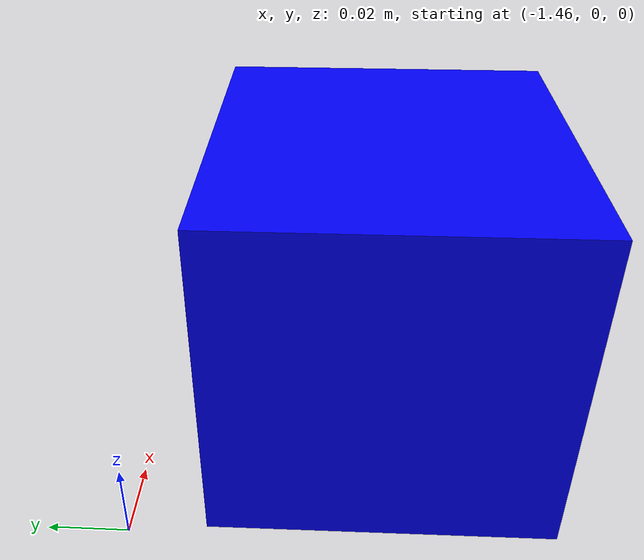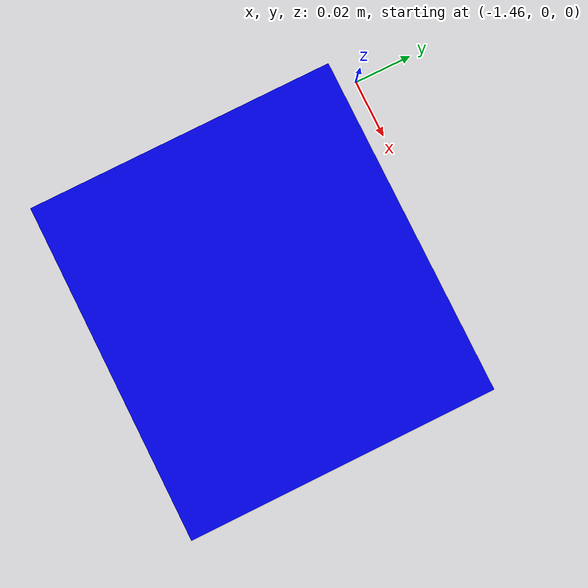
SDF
<?xml version="1.0" ?>
<sdf version="1.6">
  <model name="box_obstacle">
    <pose>-1.404677 -0.062031 0.037859 0 0 0</pose>
    <link name="box_link">
      <inertial>
        <mass>1.0</mass>
        <inertia>
          <ixx>0.01</ixx>
          <ixy>0.0</ixy>
          <ixz>0.0</ixz>
          <iyy>0.01</iyy>
          <iyz>0.0</iyz>
          <izz>0.01</izz>
        </inertia>
      </inertial>
      <collision name="box_collision">
        <geometry>
          <box>
            <size>0.097209 0.088383 0.087003</size>
          </box>
        </geometry>
      </collision>
      <visual name="box_visual">
        <geometry>
          <box>
            <size>0.097209 0.088383 0.087003</size>
          </box>
        </geometry>
        <material>
          <ambient>0 0 1 1</ambient>
          <diffuse>0 0 1 1</diffuse>
        </material>
      </visual>
    </link>
    <static>true</static>
  </model>
</sdf>
